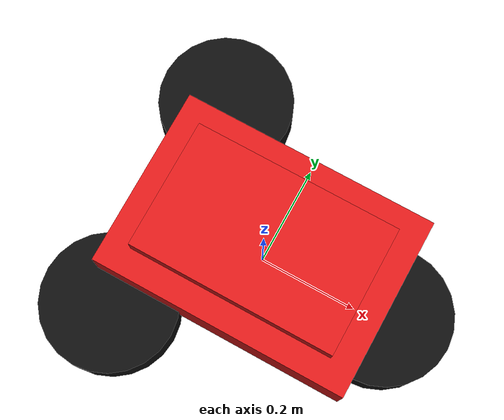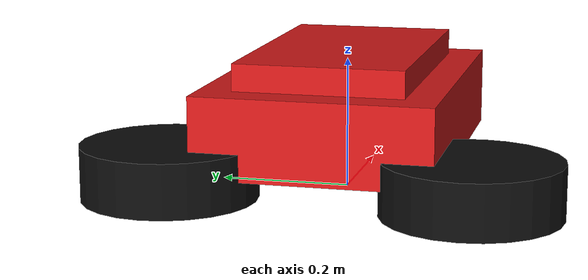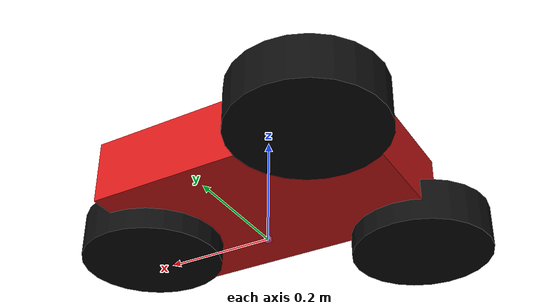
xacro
<?xml version="1.0"?>
<robot name="tricycle_robot" xmlns:xacro="http://www.ros.org/wiki/xacro">

    <!-- ==================== 宏定义 ==================== -->
    <xacro:property name="PI" value="3.1415926535" />
    <xacro:include filename="$(find robot_description)/urdf/common_property.xacro" />
    <xacro:include filename="$(find robot_description)/urdf/mobile.xacro" />
</robot>

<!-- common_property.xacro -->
<robot xmlns:xacro="http://www.ros.org/wiki/xacro">
    <!-- 颜色材质定义 -->
    <material name="body_red">
        <color rgba="0.85 0.1 0.1 1"/>
    </material>
    <material name="connector_pink">
        <color rgba="1.0 0.4 0.7 1"/>
    </material>
    <material name="wheel_black">
        <color rgba="0.15 0.15 0.15 1"/>
    </material>
    <material name="tire_dark">
        <color rgba="0.05 0.05 0.05 1"/>
    </material>
    <xacro:macro name="box_inertial" params="mxyz O_xyz O_rpy">
        <inertial>
            <mass value="$S{mxyz[0]}"/>
            <origin xyz="$S{O_xyz}" rpy="$S{O_rpy}"/>
            <inertia ixx="$S{(m/12)*(y*y+z*z)}" ixy="0" ixz="0"
            iyy="$S{(m/12)*(x*x+z*z)}" iyz="0 " izz="$S{(m/12)*(x*x+y*y)}"/>
        </inertial>
    </xacro:macro>
</robot>

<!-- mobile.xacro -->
<robot xmlns:xacro="http://www.ros.org/wiki/xacro">
    <!-- 轮子宏 -->
    <xacro:macro name="wheel_with_tire" params="name prefix x y z">
        <!-- 轮毂 -->
        <link name="${prefix}_${name}_wheel_link">
            <visual>
                <geometry><cylinder length="0.06" radius="0.10"/></geometry>
                <origin xyz="0 0 0" rpy="0 ${PI/2} 0"/>
                <material name="wheel_black"/>
            </visual>
            <collision>
                <geometry><cylinder length="0.06" radius="0.10"/></geometry>
                <origin xyz="0 0 0" rpy="0 ${PI/2} 0"/>
            </collision>
            <inertial>
                <mass value="0.08"/>
                <inertia ixx="0.0005" ixy="0" ixz="0" iyy="0.0005" iyz="0" izz="0.0005"/>
            </inertial>
        </link>

        <!-- 轮胎（稍大一圈） -->
        <link name="${prefix}_${name}_tire_link">
            <visual>
                <geometry><cylinder length="0.08" radius="0.13"/></geometry>
                <origin xyz="0 0 0" rpy="0 ${PI/2} 0"/>
                <material name="tire_dark"/>
            </visual>
            <collision>
                <geometry><cylinder length="0.08" radius="0.13"/></geometry>
                <origin xyz="0 0 0" rpy="0 ${PI/2} 0"/>
            </collision>
            <inertial>
                <mass value="0.05"/>
                <inertia ixx="0.0003" ixy="0" ixz="0" iyy="0.0003" iyz="0" izz="0.0003"/>
            </inertial>
        </link>

        <joint name="${prefix}_${name}_tire_joint" type="fixed">
            <parent link="${prefix}_${name}_wheel_link"/>
            <child link="${prefix}_${name}_tire_link"/>
            <origin xyz="0 0 0"/>
        </joint>

        <joint name="${prefix}_${name}_wheel_joint" type="continuous">
            <parent link="base_link"/>
            <child link="${prefix}_${name}_wheel_link"/>
            <origin xyz="${x} ${y} ${z}" rpy="0 ${PI/2} 0"/>
            <axis xyz="0 1 0"/>
        </joint>
    </xacro:macro>

    <link name="base_footprint">
        <visual>
            <geometry><box size="0.01 0.01 0.01"/></geometry>
            <origin xyz="0 0 0"/>
            <material name="connector_pink"/>
        </visual>
    </link>

    <joint name="footprint_to_base" type="fixed">
        <parent link="base_footprint"/>
        <child link="base_link"/>
        <origin xyz="0 0 0.12"/>
    </joint>

    <link name="base_link">
        <visual>
            <geometry><box size="0.50 0.35 0.12"/></geometry>
            <origin xyz="0 0 0"/>
            <material name="body_red"/>
        </visual>
        <collision>
            <geometry><box size="0.50 0.35 0.12"/></geometry>
            <origin xyz="0 0 0"/>
        </collision>
        <inertial>
            <mass value="0.8"/>
            <inertia ixx="0.08" ixy="0" ixz="0" iyy="0.06" iyz="0" izz="0.05"/>
        </inertial>
    </link>

    <!-- ==================== 车身 — 上层盖板（红色，略小） ==================== -->
    <link name="top_plate_link">
        <visual>
            <geometry><box size="0.40 0.25 0.04"/></geometry>
            <origin xyz="0 0 0"/>
            <material name="body_red"/>
        </visual>
        <collision>
            <geometry><box size="0.40 0.25 0.04"/></geometry>
            <origin xyz="0 0 0"/>
        </collision>
        <inertial>
            <mass value="0.2"/>
            <inertia ixx="0.01" ixy="0" ixz="0" iyy="0.01" iyz="0" izz="0.01"/>
        </inertial>
    </link>

    <joint name="top_plate_joint" type="fixed">
        <parent link="base_link"/>
        <child link="top_plate_link"/>
        <origin xyz="0 0 0.08"/>
    </joint>

    <!-- ==================== 粉色连接件 — 左后 ==================== -->
    <link name="rear_left_connector_link">
        <visual>
            <geometry><box size="0.06 0.06 0.06"/></geometry>
            <origin xyz="0 0 0"/>
            <material name="connector_pink"/>
        </visual>
    </link>
    <joint name="rear_left_connector_joint" type="fixed">
        <parent link="base_link"/>
        <child link="rear_left_connector_link"/>
        <origin xyz="-0.20 -0.18 -0.06"/>
    </joint>

    <!-- ==================== 粉色连接件 — 右后 ==================== -->
    <link name="rear_right_connector_link">
        <visual>
            <geometry><box size="0.06 0.06 0.06"/></geometry>
            <origin xyz="0 0 0"/>
            <material name="connector_pink"/>
        </visual>
    </link>
    <joint name="rear_right_connector_joint" type="fixed">
        <parent link="base_link"/>
        <child link="rear_right_connector_link"/>
        <origin xyz="-0.20 0.18 -0.06"/>
    </joint>

    <!-- ==================== 粉色连接件 — 前 ==================== -->
    <link name="front_connector_link">
        <visual>
            <geometry><box size="0.06 0.06 0.06"/></geometry>
            <origin xyz="0 0 0"/>
            <material name="connector_pink"/>
        </visual>
    </link>
    <joint name="front_connector_joint" type="fixed">
        <parent link="base_link"/>
        <child link="front_connector_link"/>
        <origin xyz="0.25 0 -0.06"/>
    </joint>

    <!-- ==================== 车轮（使用宏生成） ==================== -->
    <xacro:wheel_with_tire name="left_rear"  prefix="rr" x="-0.20" y="-0.22" z="-0.06"/>
    <xacro:wheel_with_tire name="right_rear" prefix="rr" x="-0.20" y=" 0.22" z="-0.06"/>
    <xacro:wheel_with_tire name="front"      prefix="fr" x=" 0.25" y=" 0.00" z="-0.06"/>

</robot>
